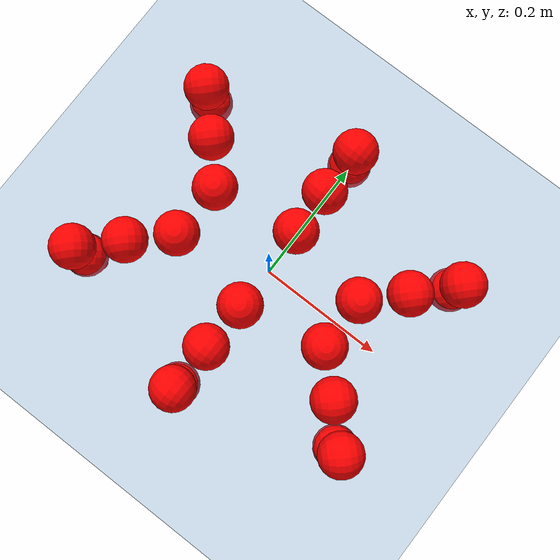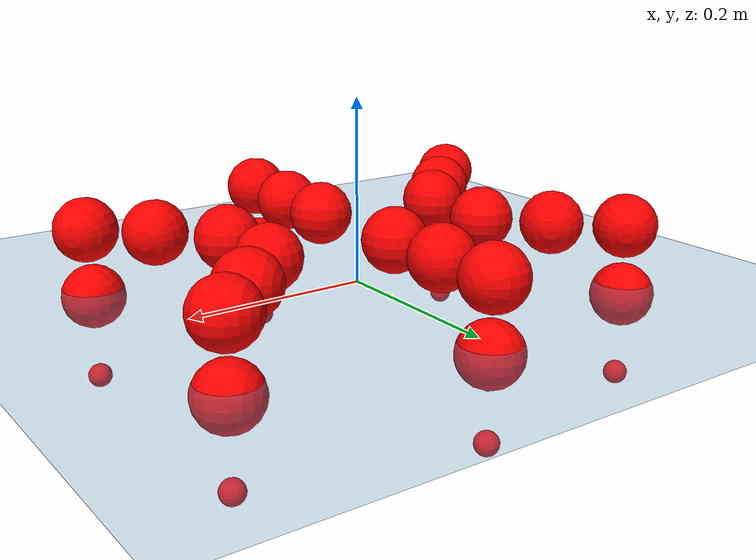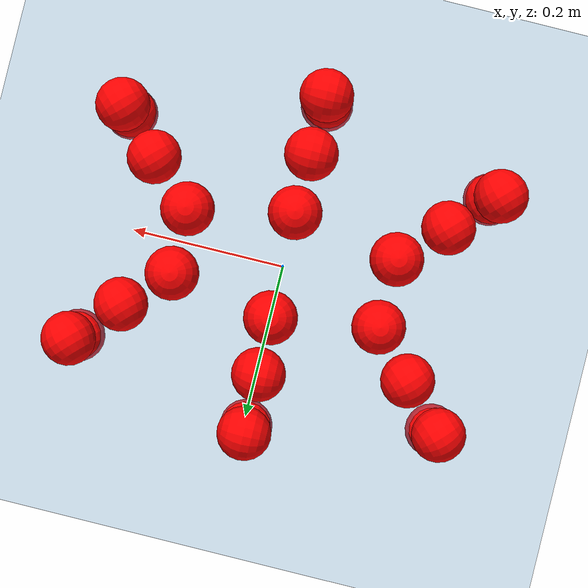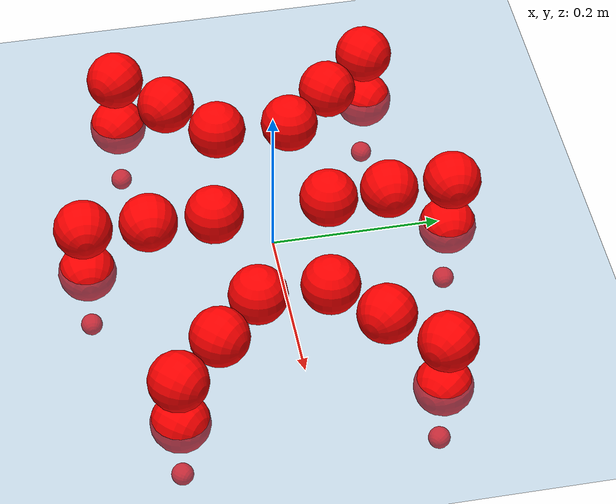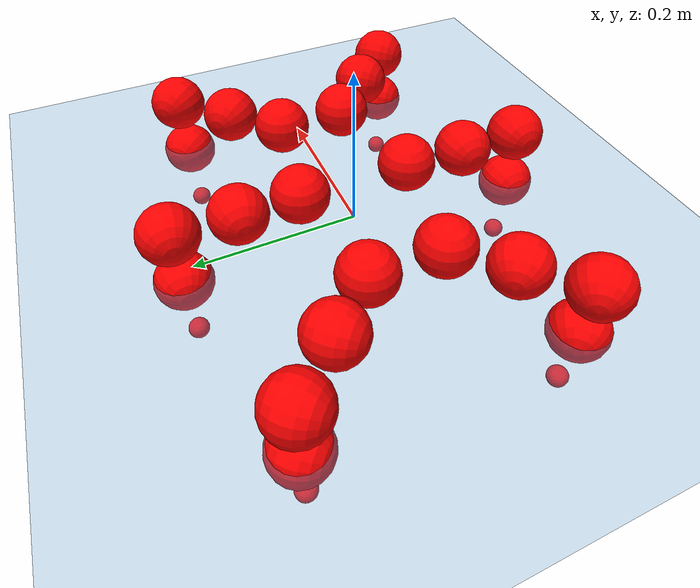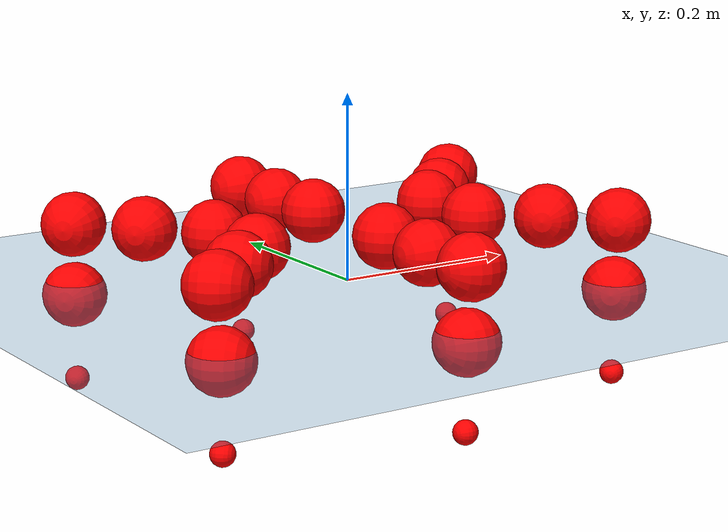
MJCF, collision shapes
<mujoco model="Golem">
  <compiler angle="radian" assetdir="assets" balanceinertia="true" inertiafromgeom="false"/>

  <option timestep="0.005" density="1.2" viscosity="2e-05"/>

  <size nkey="1"/>

  <visual>
    <quality shadowsize="8192"/>
    <map shadowclip="0.5"/>
  </visual>

  <default>
    <default class="/">
      <joint armature="0.01" damping="0.01" frictionloss="0.01"/>
      <geom contype="0" conaffinity="0" group="1" solref="-1000 -80"/>
      <site size="0.01 0.005 0.005" group="5"/>
      <general forcelimited="true" biastype="affine" gainprm="25" biasprm="0 -25 -0.5"/>
      <default class="visual">
        <geom type="mesh" group="2"/>
      </default>
      <default class="collision">
        <geom group="3"/>
      </default>
      <default class="foot">
        <geom size="0.01 0 0" condim="6" group="4" priority="1" solimp="0.015 1 0.01"/>
      </default>
      <default class="reward_collision_sphere">
        <geom group="5" rgba="1 0 0 1"/>
      </default>
    </default>
  </default>

  <asset>
    <texture type="skybox" colorspace="auto" name="//unnamed_texture_0" builtin="gradient" rgb1="0.95 0.95 0.95" rgb2="0.95 0.95 0.95" width="100" height="600"/>
    <texture type="2d" colorspace="auto" name="texplane" builtin="checker" rgb1="0.345 0.575 0.748" rgb2="0.345 0.575 0.748" markrgb="1 1 1" width="512" height="512"/>
    <material name="MatPlane" class="/" texture="texplane" texuniform="true" texrepeat="2 2" specular="0.9"/>
    <mesh name="body" class="/" file="body.stl" scale="0.001 0.001 0.001"/>
    <mesh name="coxa" class="/" file="coxa.stl" scale="0.001 0.001 0.001"/>
    <mesh name="femur" class="/" file="femur.stl" scale="0.001 0.001 0.001"/>
    <mesh name="tibia" class="/" file="tibia.stl" scale="0.001 0.001 0.001"/>
    <mesh name="tarsus" class="/" file="tarsus.stl" scale="0.001 0.001 0.001"/>
  </asset>

  <worldbody>
    <geom name="floor" class="/" size="100 100 0.125" type="plane" group="0" material="MatPlane"/>
    <light name="toplight_shadow" class="/" pos="0 0 5" dir="0.0990148 0.0990148 -0.990148" type="directional" ambient="0.04 0.04 0.04" diffuse="0.55 0.55 0.55" specular="0.12 0.12 0.12"/>
    <light name="toplight_fill" class="/" pos="0 0 5" dir="0.0990148 0.0990148 -0.990148" type="directional" castshadow="false" ambient="0.04 0.04 0.04" diffuse="0.3 0.3 0.3" specular="0.08 0.08 0.08"/>
    <body name="trunk" pos="-0.000590652 -1.40567e-05 -0.00228735" quat="1 -3.04903e-05 0.000122759 -9.00691e-05">
      <inertial pos="0.000296963 0.00114777 -0.00520552" quat="0.999995 -0.000266069 0.003123 0.000283811" mass="2.4357" diaginertia="0.00481664 0.00192849 0.0105481"/>
      <joint name="//unnamed_joint_0" type="free"/>
      <geom name="//unnamed_geom_1" class="/" pos="0 0 0.0645283" quat="1 0 0 0" type="mesh" rgba="0.9 0.9 0.9 1" mesh="body"/>
      <site name="imu" class="/" pos="0.113959 0.000594385 0.110205" size="0.0086132"/>
      <camera name="track" class="/" pos="0 -1.43265 0" quat="0.707107 0.707107 0 0" mode="trackcom"/>
      <camera name="ego_camera" class="/" pos="0.11172 0 0.100825" quat="-0.5 -0.5 0.5 0.5"/>
      <body name="coxa_RR" pos="-0.154649 -0.0611484 0.0655273" quat="0.381598 -0.000442339 0.000212183 -0.924328">
        <inertial pos="-0.00254626 -0.000484672 0.000837583" quat="0.999953 -0.00747809 -0.000892408 -0.0060848" mass="0.126335" diaginertia="0.0047021 0.00188488 0.0100563"/>
        <joint name="coxa_joint_RR" class="/" pos="0 0 0" axis="0.000791624 -0.00101397 -0.999999" range="-3.13241 3.12626" armature="0.00900774" damping="0.0108024" frictionloss="0.00945353"/>
        <geom name="//unnamed_geom_2" class="/" type="mesh" rgba="0.2 0.2 0.2 1" mesh="coxa"/>
        <geom name="//unnamed_geom_3" class="reward_collision_sphere" size="0.0344528" pos="-0.0257814 0 0"/>
        <body name="femur_RR" pos="0.0501896 0.000536354 0.000487627" quat="0.499954 -0.499802 0.500169 0.500075">
          <inertial pos="-0.000540588 0.000442897 0.00220386" quat="1 -0.000207176 2.82402e-06 0.000177461" mass="0.128655" diaginertia="0.00470545 0.0018964 0.0101737"/>
          <joint name="femur_joint_RR" class="/" pos="0 0 0" axis="-0.00635641 0.00577125 -0.999963" stiffness="0.00102192" range="-3.1602 3.14577" armature="0.00870511" damping="0.00309157" frictionloss="0.00905269"/>
          <geom name="//unnamed_geom_4" class="/" type="mesh" rgba="0.9 0.9 0.9 1" mesh="femur"/>
          <geom name="//unnamed_geom_5" class="reward_collision_sphere" size="0.0344528"/>
          <body name="tibia_RR" pos="-1.12381e-06 -0.0770733 0.000263206" quat="-6.01995e-07 1 -9.32511e-07 9.4619e-06">
            <inertial pos="0.000282009 0.00220323 -0.00228295" quat="0.99995 -0.00480152 0.00781158 -0.0040829" mass="0.127319" diaginertia="0.00458828 0.00189491 0.0103481"/>
            <joint name="tibia_joint_RR" class="/" pos="0 0 0" axis="0.00112271 0.000657716 0.999999" stiffness="0.000393531" range="-3.14029 3.11601" armature="0.00851424" damping="0.00349218" frictionloss="0.00858133"/>
            <geom name="//unnamed_geom_6" class="/" type="mesh" rgba="0.2 0.2 0.2 1" mesh="tibia"/>
            <geom name="//unnamed_geom_7" class="reward_collision_sphere" size="0.0344528"/>
            <body name="tarsus_RR" pos="0.0749151 -0.00238018 -0.00240194" quat="0.999999 0.000855504 -0.000338254 -0.000635093">
              <inertial pos="0.049891 -0.00202768 -0.00059128" quat="0.501628 0.497286 0.502156 0.498914" mass="0.124703" diaginertia="0.00471008 0.00193369 0.0105048"/>
              <joint name="tarsus_joint_RR" class="/" pos="0 0 0" axis="-0.00284212 0.0021683 0.999994" range="-3.13716 3.13259" armature="0.00841938" damping="0" frictionloss="0.00880593"/>
              <geom name="//unnamed_geom_8" class="/" type="mesh" rgba="0.9 0.9 0.9 1" mesh="tarsus"/>
              <geom name="foot_1" class="foot" size="0.00851776" pos="0.0962507 0 0" quat="0 -0.707107 0 0.707107"/>
              <geom name="//unnamed_geom_10" class="reward_collision_sphere" size="0.0344528"/>
              <geom name="//unnamed_geom_11" class="reward_collision_sphere" size="0.0129198" pos="0.0923835 0 0"/>
              <site name="foot_1" class="foot" pos="0.0962507 0 0" quat="0 -0.707107 0 0.707107" size="0.0086132"/>
            </body>
          </body>
        </body>
      </body>
      <body name="coxa_RM" pos="0.00162343 -0.0950279 0.0641825" quat="0.70706 1.40865e-05 9.17182e-06 -0.707153">
        <inertial pos="0.000257739 -0.000445612 -0.00225763" quat="0.999986 0.00375625 0.00278037 -0.00230234" mass="0.12623" diaginertia="0.0045312 0.00180818 0.0101513"/>
        <joint name="coxa_joint_RM" class="/" pos="0 0 0" axis="0.00117115 -0.00133761 -0.999998" range="-3.13762 3.1455" armature="0.00876816" damping="0.0126053" frictionloss="0.00887127"/>
        <geom name="//unnamed_geom_12" class="/" type="mesh" rgba="0.2 0.2 0.2 1" mesh="coxa"/>
        <geom name="//unnamed_geom_13" class="reward_collision_sphere" size="0.0344528" pos="-0.0257814 0 0"/>
        <body name="femur_RM" pos="0.0509536 -0.0020848 -0.00117126" quat="0.499573 -0.49969 0.501008 0.499728">
          <inertial pos="0.000786955 -0.000849344 0.00025389" quat="0.999929 0.000835437 -0.00520889 -0.0106528" mass="0.12607" diaginertia="0.00480703 0.00189514 0.0103455"/>
          <joint name="femur_joint_RM" class="/" pos="0 0 0" axis="0.00344193 0.00295065 -0.99999" range="-3.17589 3.17573" armature="0.0096641" damping="0.0228535" frictionloss="0.00839355"/>
          <geom name="//unnamed_geom_14" class="/" type="mesh" rgba="0.9 0.9 0.9 1" mesh="femur"/>
          <geom name="//unnamed_geom_15" class="reward_collision_sphere" size="0.0344528"/>
          <body name="tibia_RM" pos="-0.00179273 -0.075811 -0.000830804" quat="-0.000155 1 7.08127e-05 -6.39621e-05">
            <inertial pos="0.000977874 0.000351291 -0.00204017" quat="0.999964 -0.00720633 -0.000238199 0.00445882" mass="0.121487" diaginertia="0.00453334 0.00184156 0.0104581"/>
            <joint name="tibia_joint_RM" class="/" pos="0 0 0" axis="0.0045896 -0.000757786 0.999989" stiffness="0.00162662" range="-3.17378 3.1023" armature="0.00785863" damping="0" frictionloss="0.00902303"/>
            <geom name="//unnamed_geom_16" class="/" type="mesh" rgba="0.2 0.2 0.2 1" mesh="tibia"/>
            <geom name="//unnamed_geom_17" class="reward_collision_sphere" size="0.0344528"/>
            <body name="tarsus_RM" pos="0.0758784 -0.00132505 0.00306915" quat="1 -0.000249196 2.46321e-05 -1.54125e-06">
              <inertial pos="0.0522578 0.00031578 0.000854651" quat="0.496678 0.50528 0.499016 0.498985" mass="0.12796" diaginertia="0.00473715 0.00188384 0.0105382"/>
              <joint name="tarsus_joint_RM" class="/" pos="0 0 0" axis="0.00167191 0.00193398 0.999997" range="-3.13051 3.18997" armature="0.00876112" damping="0" frictionloss="0.00890603"/>
              <geom name="//unnamed_geom_18" class="/" type="mesh" rgba="0.9 0.9 0.9 1" mesh="tarsus"/>
              <geom name="foot_2" class="foot" size="0.00796055" pos="0.0962507 0 0" quat="0 -0.707107 0 0.707107"/>
              <geom name="//unnamed_geom_20" class="reward_collision_sphere" size="0.0344528"/>
              <geom name="//unnamed_geom_21" class="reward_collision_sphere" size="0.0129198" pos="0.0923835 0 0"/>
              <site name="foot_2" class="foot" pos="0.0962507 0 0" quat="0 -0.707107 0 0.707107" size="0.0086132"/>
            </body>
          </body>
        </body>
      </body>
      <body name="coxa_RF" pos="0.152178 -0.0596243 0.0643675" quat="0.923531 -0.000609808 0.00034926 -0.383524">
        <inertial pos="0.0022899 -0.00204708 0.00102754" quat="0.999989 -0.00285481 0.0017243 -0.00317096" mass="0.127995" diaginertia="0.00478954 0.001872 0.010464"/>
        <joint name="coxa_joint_RF" class="/" pos="0 0 0" axis="-0.00565122 0.00323798 -0.999979" range="-3.14148 3.14862" armature="0.00873644" damping="0" frictionloss="0.00893481"/>
        <geom name="//unnamed_geom_22" class="/" type="mesh" rgba="0.2 0.2 0.2 1" mesh="coxa"/>
        <geom name="//unnamed_geom_23" class="reward_collision_sphere" size="0.0344528" pos="-0.0257814 0 0"/>
        <body name="femur_RF" pos="0.0514063 0.00224104 0.00220701" quat="0.50099 -0.499802 0.500109 0.499097">
          <inertial pos="-9.17033e-05 -0.00031596 0.000593094" quat="0.999999 -0.00074289 0.000768164 0.000738405" mass="0.128578" diaginertia="0.00470439 0.00189419 0.010403"/>
          <joint name="femur_joint_RF" class="/" pos="0 0 0" axis="0.00151169 -0.00537844 -0.999984" range="-3.143 3.14081" armature="0.00870999" damping="0.012657" frictionloss="0.00843396"/>
          <geom name="//unnamed_geom_24" class="/" type="mesh" rgba="0.9 0.9 0.9 1" mesh="femur"/>
          <geom name="//unnamed_geom_25" class="reward_collision_sphere" size="0.0344528"/>
          <body name="tibia_RF" pos="0.00106287 -0.0770072 0.00024315" quat="-0.000348569 1 0.000207179 -0.000164098">
            <inertial pos="-0.000609277 -0.00145155 -0.000436002" quat="0.999995 -0.00135954 -0.000309069 -0.00281871" mass="0.122936" diaginertia="0.00454796 0.0018149 0.0103713"/>
            <joint name="tibia_joint_RF" class="/" pos="0 0 0" axis="0.00298626 0.0022679 0.999993" stiffness="0.00113642" range="-3.12956 3.10161" armature="0.00858879" damping="0" frictionloss="0.00862767"/>
            <geom name="//unnamed_geom_26" class="/" type="mesh" rgba="0.2 0.2 0.2 1" mesh="tibia"/>
            <geom name="//unnamed_geom_27" class="reward_collision_sphere" size="0.0344528"/>
            <body name="tarsus_RF" pos="0.0740317 -0.00268012 0.00130969" quat="1 0.000403095 -7.01795e-05 -0.00022802">
              <inertial pos="0.0508586 0.000720389 -0.00101947" quat="0.499902 0.499947 0.500118 0.500034" mass="0.129788" diaginertia="0.0046812 0.0019502 0.010553"/>
              <joint name="tarsus_joint_RF" class="/" pos="0 0 0" axis="0.00254844 -0.00123833 0.999996" range="-3.14419 3.15596" armature="0.00826496" damping="0" frictionloss="0.00869865"/>
              <geom name="//unnamed_geom_28" class="/" type="mesh" rgba="0.9 0.9 0.9 1" mesh="tarsus"/>
              <geom name="foot_3" class="foot" size="0.00839142" pos="0.0962507 0 0" quat="0 -0.707107 0 0.707107"/>
              <geom name="//unnamed_geom_30" class="reward_collision_sphere" size="0.0344528"/>
              <geom name="//unnamed_geom_31" class="reward_collision_sphere" size="0.0129198" pos="0.0923835 0 0"/>
              <site name="foot_3" class="foot" pos="0.0962507 0 0" quat="0 -0.707107 0 0.707107" size="0.0086132"/>
            </body>
          </body>
        </body>
      </body>
      <body name="coxa_LR" pos="-0.15314 0.0631815 0.0629035" quat="0.382725 0.000122946 -4.80788e-05 0.923862">
        <inertial pos="0.000190672 0.000712577 -0.000981216" quat="0.999985 -0.0033129 -0.00280763 -0.00329478" mass="0.124923" diaginertia="0.00453597 0.00186352 0.0101114"/>
        <joint name="coxa_joint_LR" class="/" pos="0 0 0" axis="0.000686114 -0.00307955 -0.999995" stiffness="0.00102024" range="-3.1329 3.14602" armature="0.00828849" damping="0.0158192" frictionloss="0.00923695"/>
        <geom name="//unnamed_geom_32" class="/" type="mesh" rgba="0.2 0.2 0.2 1" mesh="coxa"/>
        <geom name="//unnamed_geom_33" class="reward_collision_sphere" size="0.0344528" pos="-0.0257814 0 0"/>
        <body name="femur_LR" pos="0.0506179 -0.00363474 -0.000463396" quat="0.500326 -0.499747 0.500102 0.499824">
          <inertial pos="-0.000771545 0.000357229 -0.00265411" quat="1 0.000335999 -0.000189552 7.16977e-06" mass="0.124334" diaginertia="0.00456363 0.00183716 0.0101352"/>
          <joint name="femur_joint_LR" class="/" pos="0 0 0" axis="-0.0120404 0.00325375 0.999922" range="-3.14458 3.13783" armature="0.00885008" damping="0.00868614" frictionloss="0.00866604"/>
          <geom name="//unnamed_geom_34" class="/" type="mesh" rgba="0.9 0.9 0.9 1" mesh="femur"/>
          <geom name="//unnamed_geom_35" class="reward_collision_sphere" size="0.0344528"/>
          <body name="tibia_LR" pos="-0.000560031 -0.0781321 -0.00192656" quat="6.57205e-06 1 -7.47228e-07 -0.000213179">
            <inertial pos="-0.000370861 0.00216066 -0.0006157" quat="0.999989 -0.00151855 0.00337827 -0.00270062" mass="0.128082" diaginertia="0.00457256 0.00189771 0.0107024"/>
            <joint name="tibia_joint_LR" class="/" pos="0 0 0" axis="-0.0119598 0.00023563 -0.999928" range="-3.10657 3.0872" armature="0.00971924" damping="0" frictionloss="0.00900395"/>
            <geom name="//unnamed_geom_36" class="/" type="mesh" rgba="0.2 0.2 0.2 1" mesh="tibia"/>
            <geom name="//unnamed_geom_37" class="reward_collision_sphere" size="0.0344528"/>
            <body name="tarsus_LR" pos="0.0768006 0.0014058 0.00151657" quat="1 -0.000420403 0.000112662 -0.000300451">
              <inertial pos="0.0543968 0.000597832 -0.00241069" quat="0.499495 0.500223 0.500083 0.500199" mass="0.128047" diaginertia="0.00472316 0.00189514 0.0103286"/>
              <joint name="tarsus_joint_LR" class="/" pos="0 0 0" axis="-0.000254663 0.000341583 -1" range="-3.13055 3.13626" armature="0.00806328" damping="0.0118013" frictionloss="0.0085989"/>
              <geom name="//unnamed_geom_38" class="/" type="mesh" rgba="0.9 0.9 0.9 1" mesh="tarsus"/>
              <geom name="foot_4" class="foot" size="0.00864381" pos="0.0962507 0 0" quat="0.707107 0 -0.707107 0"/>
              <geom name="//unnamed_geom_40" class="reward_collision_sphere" size="0.0344528"/>
              <geom name="//unnamed_geom_41" class="reward_collision_sphere" size="0.0129198" pos="0.0923835 0 0"/>
              <site name="foot_4" class="foot" pos="0.0962507 0 0" quat="0.707107 0 -0.707107 0" size="0.0086132"/>
            </body>
          </body>
        </body>
      </body>
      <body name="coxa_LM" pos="-0.000252346 0.0920184 0.0652413" quat="0.707272 0.000291101 0.000174626 0.706941">
        <inertial pos="0.000351211 -0.00223257 0.00266347" quat="0.999999 -0.0010199 -0.000321478 0.000881485" mass="0.129908" diaginertia="0.00479317 0.0019059 0.0106034"/>
        <joint name="coxa_joint_LM" class="/" pos="0 0 0" axis="0.00492474 0.00754878 -0.999959" range="-3.14949 3.15714" armature="0.00757533" damping="0.00641099" frictionloss="0.00854315"/>
        <geom name="//unnamed_geom_42" class="/" type="mesh" rgba="0.2 0.2 0.2 1" mesh="coxa"/>
        <geom name="//unnamed_geom_43" class="reward_collision_sphere" size="0.0344528" pos="-0.0257814 0 0"/>
        <body name="femur_LM" pos="0.0469061 0.00260711 -0.000596695" quat="0.50004 -0.499928 0.499998 0.500034">
          <inertial pos="-0.00250699 0.000232085 -0.000751113" quat="0.999996 -0.000377413 -0.00120162 0.0024561" mass="0.123198" diaginertia="0.00461041 0.00183541 0.00999354"/>
          <joint name="femur_joint_LM" class="/" pos="0 0 0" axis="0.00445375 -0.0122891 0.999915" stiffness="6.78135e-05" range="-3.13781 3.13518" armature="0.00883436" damping="0.00686927" frictionloss="0.00927665"/>
          <geom name="//unnamed_geom_44" class="/" type="mesh" rgba="0.9 0.9 0.9 1" mesh="femur"/>
          <geom name="//unnamed_geom_45" class="reward_collision_sphere" size="0.0344528"/>
          <body name="tibia_LM" pos="-0.000524964 -0.0756568 0.000173883" quat="-0.000435391 1 -0.000167805 -0.000232129">
            <inertial pos="-0.00103138 3.21465e-05 0.00131036" quat="0.99997 0.00486289 0.00560225 -0.00220788" mass="0.124002" diaginertia="0.00463809 0.00188106 0.0101839"/>
            <joint name="tibia_joint_LM" class="/" pos="0 0 0" axis="0.00143578 0.00476263 -0.999988" range="-3.13816 3.1806" armature="0.00817122" damping="0.00292017" frictionloss="0.00839101"/>
            <geom name="//unnamed_geom_46" class="/" type="mesh" rgba="0.2 0.2 0.2 1" mesh="tibia"/>
            <geom name="//unnamed_geom_47" class="reward_collision_sphere" size="0.0344528"/>
            <body name="tarsus_LM" pos="0.0758312 -0.00175936 -1.24928e-06" quat="1 2.27923e-06 1.60995e-07 1.18763e-06">
              <inertial pos="0.0539686 0.00161796 0.00104305" quat="0.499919 0.49985 0.499947 0.500284" mass="0.127236" diaginertia="0.00475306 0.00190789 0.0105036"/>
              <joint name="tarsus_joint_LM" class="/" pos="0 0 0" axis="-0.00204533 0.00058308 -0.999998" range="-3.14968 3.13037" armature="0.00860206" damping="0" frictionloss="0.00905972"/>
              <geom name="//unnamed_geom_48" class="/" type="mesh" rgba="0.9 0.9 0.9 1" mesh="tarsus"/>
              <geom name="foot_5" class="foot" size="0.00873904" pos="0.0962507 0 0" quat="0.707107 0 -0.707107 0"/>
              <geom name="//unnamed_geom_50" class="reward_collision_sphere" size="0.0344528"/>
              <geom name="//unnamed_geom_51" class="reward_collision_sphere" size="0.0129198" pos="0.0923835 0 0"/>
              <site name="foot_5" class="foot" pos="0.0962507 0 0" quat="0.707107 0 -0.707107 0" size="0.0086132"/>
            </body>
          </body>
        </body>
      </body>
      <body name="coxa_LF" pos="0.151615 0.0601193 0.0640275" quat="0.923826 -0.000333208 -0.000361461 0.382813">
        <inertial pos="0.00168296 -0.000607976 -0.000751326" quat="0.999933 0.00715982 0.00137432 0.00898115" mass="0.128386" diaginertia="0.00483035 0.00186011 0.0104195"/>
        <joint name="coxa_joint_LF" class="/" pos="0 0 0" axis="-0.003302 0.00104299 -0.999994" range="-3.14384 3.09677" armature="0.00863133" damping="0.0121189" frictionloss="0.00840572"/>
        <geom name="//unnamed_geom_52" class="/" type="mesh" rgba="0.2 0.2 0.2 1" mesh="coxa"/>
        <geom name="//unnamed_geom_53" class="reward_collision_sphere" size="0.0344528" pos="-0.0257814 0 0"/>
        <body name="femur_LF" pos="0.0492528 0.000220887 -0.00147675" quat="0.50021 -0.500165 0.500139 0.499485">
          <inertial pos="-0.00181924 0.000913301 -0.000151141" quat="0.999994 -0.00232582 -0.00152857 0.00212612" mass="0.12956" diaginertia="0.00458846 0.00189977 0.0104014"/>
          <joint name="femur_joint_LF" class="/" pos="0 0 0" axis="0.012555 0.000496326 0.999921" range="-3.18275 3.14964" armature="0.008574" damping="0" frictionloss="0.00861275"/>
          <geom name="//unnamed_geom_54" class="/" type="mesh" rgba="0.9 0.9 0.9 1" mesh="femur"/>
          <geom name="//unnamed_geom_55" class="reward_collision_sphere" size="0.0344528"/>
          <body name="tibia_LF" pos="-0.00107779 -0.0783599 0.00276226" quat="-0.000250042 1 -0.000108245 0.000525073">
            <inertial pos="-0.00175443 0.00045147 9.55061e-05" quat="0.999918 -0.00864187 -0.00893124 -0.00319858" mass="0.131849" diaginertia="0.00464418 0.00189064 0.0105604"/>
            <joint name="tibia_joint_LF" class="/" pos="0 0 0" axis="-0.000242454 0.000967254 -1" range="-3.14276 3.12845" armature="0.00876335" damping="0.00326745" frictionloss="0.00882717"/>
            <geom name="//unnamed_geom_56" class="/" type="mesh" rgba="0.2 0.2 0.2 1" mesh="tibia"/>
            <geom name="//unnamed_geom_57" class="reward_collision_sphere" size="0.0344528"/>
            <body name="tarsus_LF" pos="0.0763231 -0.00161753 0.000182719" quat="1 -1.13892e-06 -2.94256e-06 -8.65789e-07">
              <inertial pos="0.0515994 0.00106349 -0.00149233" quat="0.498604 0.503721 0.500413 0.49724" mass="0.120813" diaginertia="0.00454717 0.00182596 0.0100334"/>
              <joint name="tarsus_joint_LF" class="/" pos="0 0 0" axis="0.00029848 -0.000918417 -1" range="-3.11885 3.13676" armature="0.00873694" damping="0.0210764" frictionloss="0.00876869"/>
              <geom name="//unnamed_geom_58" class="/" type="mesh" rgba="0.9 0.9 0.9 1" mesh="tarsus"/>
              <geom name="foot_6" class="foot" size="0.00891835" pos="0.0962507 0 0" quat="0.707107 0 -0.707107 0"/>
              <geom name="//unnamed_geom_60" class="reward_collision_sphere" size="0.0344528"/>
              <geom name="//unnamed_geom_61" class="reward_collision_sphere" size="0.0129198" pos="0.0923835 0 0"/>
              <site name="foot_6" class="foot" pos="0.0962507 0 0" quat="0.707107 0 -0.707107 0" size="0.0086132"/>
            </body>
          </body>
        </body>
      </body>
    </body>
  </worldbody>

  <contact>
    <pair class="/" geom1="floor" geom2="foot_1" name="//unnamed_contact_0"/>
    <pair class="/" geom1="floor" geom2="foot_2" name="//unnamed_contact_1"/>
    <pair class="/" geom1="floor" geom2="foot_3" name="//unnamed_contact_2"/>
    <pair class="/" geom1="floor" geom2="foot_4" name="//unnamed_contact_3"/>
    <pair class="/" geom1="floor" geom2="foot_5" name="//unnamed_contact_4"/>
    <pair class="/" geom1="floor" geom2="foot_6" name="//unnamed_contact_5"/>
  </contact>

  <actuator>
    <general name="coxa_joint_RR" class="/" joint="coxa_joint_RR" forcerange="-6.16507 6.16507" gainprm="21.1215" biasprm="0 -21.1215 -0.457358"/>
    <general name="femur_joint_RR" class="/" joint="femur_joint_RR" forcerange="-6.43102 6.43102" gainprm="21.1215" biasprm="0 -21.1215 -0.457358"/>
    <general name="tibia_joint_RR" class="/" joint="tibia_joint_RR" forcerange="-5.82417 5.82417" gainprm="21.1215" biasprm="0 -21.1215 -0.457358"/>
    <general name="tarsus_joint_RR" class="/" joint="tarsus_joint_RR" forcerange="-6.10842 6.10842" gainprm="21.1215" biasprm="0 -21.1215 -0.457358"/>
    <general name="coxa_joint_RM" class="/" joint="coxa_joint_RM" forcerange="-6.89333 6.89333" gainprm="21.1215" biasprm="0 -21.1215 -0.457358"/>
    <general name="femur_joint_RM" class="/" joint="femur_joint_RM" forcerange="-6.15789 6.15789" gainprm="21.1215" biasprm="0 -21.1215 -0.457358"/>
    <general name="tibia_joint_RM" class="/" joint="tibia_joint_RM" forcerange="-6.1287 6.1287" gainprm="21.1215" biasprm="0 -21.1215 -0.457358"/>
    <general name="tarsus_joint_RM" class="/" joint="tarsus_joint_RM" forcerange="-5.81887 5.81887" gainprm="21.1215" biasprm="0 -21.1215 -0.457358"/>
    <general name="coxa_joint_RF" class="/" joint="coxa_joint_RF" forcerange="-6.69085 6.69085" gainprm="21.1215" biasprm="0 -21.1215 -0.457358"/>
    <general name="femur_joint_RF" class="/" joint="femur_joint_RF" forcerange="-6.31505 6.31505" gainprm="21.1215" biasprm="0 -21.1215 -0.457358"/>
    <general name="tibia_joint_RF" class="/" joint="tibia_joint_RF" forcerange="-6.27111 6.27111" gainprm="21.1215" biasprm="0 -21.1215 -0.457358"/>
    <general name="tarsus_joint_RF" class="/" joint="tarsus_joint_RF" forcerange="-6.28881 6.28881" gainprm="21.1215" biasprm="0 -21.1215 -0.457358"/>
    <general name="coxa_joint_LR" class="/" joint="coxa_joint_LR" forcerange="-6.8264 6.8264" gainprm="21.1215" biasprm="0 -21.1215 -0.457358"/>
    <general name="femur_joint_LR" class="/" joint="femur_joint_LR" forcerange="-6.31007 6.31007" gainprm="21.1215" biasprm="0 -21.1215 -0.457358"/>
    <general name="tibia_joint_LR" class="/" joint="tibia_joint_LR" forcerange="-6.58775 6.58775" gainprm="21.1215" biasprm="0 -21.1215 -0.457358"/>
    <general name="tarsus_joint_LR" class="/" joint="tarsus_joint_LR" forcerange="-6.85731 6.85731" gainprm="21.1215" biasprm="0 -21.1215 -0.457358"/>
    <general name="coxa_joint_LM" class="/" joint="coxa_joint_LM" forcerange="-5.84354 5.84354" gainprm="21.1215" biasprm="0 -21.1215 -0.457358"/>
    <general name="femur_joint_LM" class="/" joint="femur_joint_LM" forcerange="-6.04603 6.04603" gainprm="21.1215" biasprm="0 -21.1215 -0.457358"/>
    <general name="tibia_joint_LM" class="/" joint="tibia_joint_LM" forcerange="-6.80061 6.80061" gainprm="21.1215" biasprm="0 -21.1215 -0.457358"/>
    <general name="tarsus_joint_LM" class="/" joint="tarsus_joint_LM" forcerange="-6.89055 6.89055" gainprm="21.1215" biasprm="0 -21.1215 -0.457358"/>
    <general name="coxa_joint_LF" class="/" joint="coxa_joint_LF" forcerange="-6.01433 6.01433" gainprm="21.1215" biasprm="0 -21.1215 -0.457358"/>
    <general name="femur_joint_LF" class="/" joint="femur_joint_LF" forcerange="-6.04822 6.04822" gainprm="21.1215" biasprm="0 -21.1215 -0.457358"/>
    <general name="tibia_joint_LF" class="/" joint="tibia_joint_LF" forcerange="-6.52347 6.52347" gainprm="21.1215" biasprm="0 -21.1215 -0.457358"/>
    <general name="tarsus_joint_LF" class="/" joint="tarsus_joint_LF" forcerange="-6.36693 6.36693" gainprm="21.1215" biasprm="0 -21.1215 -0.457358"/>
  </actuator>

  <sensor>
    <gyro site="imu" name="imu_angular_velocity"/>
    <velocimeter site="imu" name="imu_linear_velocity"/>
    <framelinvel objtype="site" objname="foot_1" name="foot_1_global_linear_velocity"/>
    <framelinvel objtype="site" objname="foot_2" name="foot_2_global_linear_velocity"/>
    <framelinvel objtype="site" objname="foot_3" name="foot_3_global_linear_velocity"/>
    <framelinvel objtype="site" objname="foot_4" name="foot_4_global_linear_velocity"/>
    <framelinvel objtype="site" objname="foot_5" name="foot_5_global_linear_velocity"/>
    <framelinvel objtype="site" objname="foot_6" name="foot_6_global_linear_velocity"/>
  </sensor>

  <keyframe>
    <key name="home" qpos="0 0 0.1457 1 0 0 0 0 0 0 0 0 0 0 0 0 0 0 0 0 0 0 0 0 0 0 0 0 0 0 0"/>
  </keyframe>
</mujoco>
